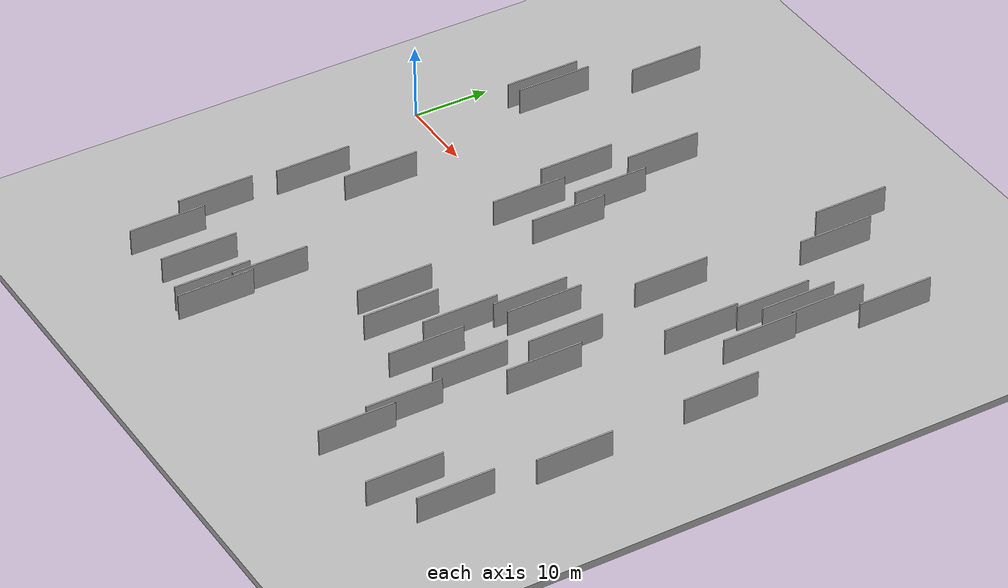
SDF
<?xml version="1.0" encoding="utf-8"?>

<sdf version="1.6">

   <world name="default">

      <gui fullscreen="0">

         <camera name="user_camera">

            <pose>-15 0 4.57585 0 0 0</pose>

            <view_controller>orbit</view_controller>

         </camera>

      </gui>

      <scene>

         <sky>

           <clouds>

             <speed>12</speed>

           </clouds>

         </sky>

         <ambient>0.4 0.4 0.4 1</ambient>

         <background>0.7 0.7 0.7 1</background>

         <shadows>1</shadows>

      </scene>

      <gravity>0 0 -9.8066</gravity>

      <magnetic_field>6e-06 2.3e-05 -4.2e-05</magnetic_field>

      <physics default="0" name="default_physics" type="ode">

         <ode>

            <solver>

               <type>quick</type>

               <iters>10</iters>

               <sor>1.0</sor>

               <use_dynamic_moi_rescaling>0</use_dynamic_moi_rescaling>

            </solver>

            <constraints>

               <cfm>0</cfm>

               <erp>0.2</erp>

               <contact_max_correcting_vel>100</contact_max_correcting_vel>

               <contact_surface_layer>0.001</contact_surface_layer>

            </constraints>

         </ode>

         <max_step_size>0.004</max_step_size>

         <real_time_factor>1</real_time_factor>

         <real_time_update_rate>250</real_time_update_rate>

      </physics>

      <light name="sun" type="directional">

         <cast_shadows>1</cast_shadows>

         <pose>0 0 10 0 0 0</pose>

         <diffuse>0.8 0.8 0.8 1</diffuse>

         <specular>0.2 0.2 0.2 1</specular>

         <attenuation>

            <range>1000</range>

            <constant>0.9</constant>

            <linear>0.01</linear>

            <quadratic>0.001</quadratic>

         </attenuation>

         <direction>-0.5 0.1 -0.9</direction>

      </light>

      <include>

         <name>ground_plane_1</name>

         <uri>model://HANNAS_ground_plane</uri>

         <pose>0 0 0  0 0 0</pose>

      </include>

      <include>

         <name>ground_plane_2</name>

         <uri>model://HANNAS_ground_plane</uri>

         <pose>100 0 0  0 0 0</pose>

      </include>

      <model name="HANNAS_wall_1">

         <static>1</static>

         <pose frame="">62.5590 -37.4555 0.0 0.000000 0.000000 1.570796</pose>

         <link name="link">

            <pose frame="">0 0 2.00 0 0 0</pose>

            <collision name="collision">

               <geometry>

                  <box>

                     <size>10.00 0.2 4.00</size>

                  </box>

               </geometry>

               <max_contacts>10</max_contacts>

               <surface>

                  <contact>

                     <ode/>

                  </contact>

                  <bounce/>

                  <friction>

                     <torsional>

                        <ode/>

                     </torsional>

                     <ode/>

                  </friction>

               </surface>

            </collision>

            <visual name="visual">

               <cast_shadows>0</cast_shadows>

               <geometry>

                  <box>

                     <size>10.00 0.2 4.00</size>

                  </box>

               </geometry>

               <material>

                  <script>

                     <uri>model://HANNAS_wall/materials/scripts</uri>

                     <uri>model://HANNAS_wall/materials/textures</uri>

                     <name>vrc/HANNAS_wall</name>

                  </script>

               </material>

            </visual>

            <self_collide>0</self_collide>

            <enable_wind>0</enable_wind>

            <kinematic>0</kinematic>

         </link>

      </model>

      <model name="HANNAS_wall_2">

         <static>1</static>

         <pose frame="">50.7144 28.4899 0.0 0.000000 0.000000 1.570796</pose>

         <link name="link">

            <pose frame="">0 0 2.00 0 0 0</pose>

            <collision name="collision">

               <geometry>

                  <box>

                     <size>10.00 0.2 4.00</size>

                  </box>

               </geometry>

               <max_contacts>10</max_contacts>

               <surface>

                  <contact>

                     <ode/>

                  </contact>

                  <bounce/>

                  <friction>

                     <torsional>

                        <ode/>

                     </torsional>

                     <ode/>

                  </friction>

               </surface>

            </collision>

            <visual name="visual">

               <cast_shadows>0</cast_shadows>

               <geometry>

                  <box>

                     <size>10.00 0.2 4.00</size>

                  </box>

               </geometry>

               <material>

                  <script>

                     <uri>model://HANNAS_wall/materials/scripts</uri>

                     <uri>model://HANNAS_wall/materials/textures</uri>

                     <name>vrc/HANNAS_wall</name>

                  </script>

               </material>

            </visual>

            <self_collide>0</self_collide>

            <enable_wind>0</enable_wind>

            <kinematic>0</kinematic>

         </link>

      </model>

      <model name="HANNAS_wall_3">

         <static>1</static>

         <pose frame="">22.3722 9.6386 0.0 0.000000 0.000000 1.570796</pose>

         <link name="link">

            <pose frame="">0 0 2.00 0 0 0</pose>

            <collision name="collision">

               <geometry>

                  <box>

                     <size>10.00 0.2 4.00</size>

                  </box>

               </geometry>

               <max_contacts>10</max_contacts>

               <surface>

                  <contact>

                     <ode/>

                  </contact>

                  <bounce/>

                  <friction>

                     <torsional>

                        <ode/>

                     </torsional>

                     <ode/>

                  </friction>

               </surface>

            </collision>

            <visual name="visual">

               <cast_shadows>0</cast_shadows>

               <geometry>

                  <box>

                     <size>10.00 0.2 4.00</size>

                  </box>

               </geometry>

               <material>

                  <script>

                     <uri>model://HANNAS_wall/materials/scripts</uri>

                     <uri>model://HANNAS_wall/materials/textures</uri>

                     <name>vrc/HANNAS_wall</name>

                  </script>

               </material>

            </visual>

            <self_collide>0</self_collide>

            <enable_wind>0</enable_wind>

            <kinematic>0</kinematic>

         </link>

      </model>

      <model name="HANNAS_wall_4">

         <static>1</static>

         <pose frame="">68.6791 0.6050 0.0 0.000000 0.000000 1.570796</pose>

         <link name="link">

            <pose frame="">0 0 2.00 0 0 0</pose>

            <collision name="collision">

               <geometry>

                  <box>

                     <size>10.00 0.2 4.00</size>

                  </box>

               </geometry>

               <max_contacts>10</max_contacts>

               <surface>

                  <contact>

                     <ode/>

                  </contact>

                  <bounce/>

                  <friction>

                     <torsional>

                        <ode/>

                     </torsional>

                     <ode/>

                  </friction>

               </surface>

            </collision>

            <visual name="visual">

               <cast_shadows>0</cast_shadows>

               <geometry>

                  <box>

                     <size>10.00 0.2 4.00</size>

                  </box>

               </geometry>

               <material>

                  <script>

                     <uri>model://HANNAS_wall/materials/scripts</uri>

                     <uri>model://HANNAS_wall/materials/textures</uri>

                     <name>vrc/HANNAS_wall</name>

                  </script>

               </material>

            </visual>

            <self_collide>0</self_collide>

            <enable_wind>0</enable_wind>

            <kinematic>0</kinematic>

         </link>

      </model>

      <model name="HANNAS_wall_5">

         <static>1</static>

         <pose frame="">57.3761 15.1290 0.0 0.000000 0.000000 1.570796</pose>

         <link name="link">

            <pose frame="">0 0 2.00 0 0 0</pose>

            <collision name="collision">

               <geometry>

                  <box>

                     <size>10.00 0.2 4.00</size>

                  </box>

               </geometry>

               <max_contacts>10</max_contacts>

               <surface>

                  <contact>

                     <ode/>

                  </contact>

                  <bounce/>

                  <friction>

                     <torsional>

                        <ode/>

                     </torsional>

                     <ode/>

                  </friction>

               </surface>

            </collision>

            <visual name="visual">

               <cast_shadows>0</cast_shadows>

               <geometry>

                  <box>

                     <size>10.00 0.2 4.00</size>

                  </box>

               </geometry>

               <material>

                  <script>

                     <uri>model://HANNAS_wall/materials/scripts</uri>

                     <uri>model://HANNAS_wall/materials/textures</uri>

                     <name>vrc/HANNAS_wall</name>

                  </script>

               </material>

            </visual>

            <self_collide>0</self_collide>

            <enable_wind>0</enable_wind>

            <kinematic>0</kinematic>

         </link>

      </model>

      <model name="HANNAS_wall_6">

         <static>1</static>

         <pose frame="">5.4550 -30.9856 0.0 0.000000 0.000000 1.570796</pose>

         <link name="link">

            <pose frame="">0 0 2.00 0 0 0</pose>

            <collision name="collision">

               <geometry>

                  <box>

                     <size>10.00 0.2 4.00</size>

                  </box>

               </geometry>

               <max_contacts>10</max_contacts>

               <surface>

                  <contact>

                     <ode/>

                  </contact>

                  <bounce/>

                  <friction>

                     <torsional>

                        <ode/>

                     </torsional>

                     <ode/>

                  </friction>

               </surface>

            </collision>

            <visual name="visual">

               <cast_shadows>0</cast_shadows>

               <geometry>

                  <box>

                     <size>10.00 0.2 4.00</size>

                  </box>

               </geometry>

               <material>

                  <script>

                     <uri>model://HANNAS_wall/materials/scripts</uri>

                     <uri>model://HANNAS_wall/materials/textures</uri>

                     <name>vrc/HANNAS_wall</name>

                  </script>

               </material>

            </visual>

            <self_collide>0</self_collide>

            <enable_wind>0</enable_wind>

            <kinematic>0</kinematic>

         </link>

      </model>

      <model name="HANNAS_wall_7">

         <static>1</static>

         <pose frame="">69.1262 -19.2305 0.0 0.000000 0.000000 1.570796</pose>

         <link name="link">

            <pose frame="">0 0 2.00 0 0 0</pose>

            <collision name="collision">

               <geometry>

                  <box>

                     <size>10.00 0.2 4.00</size>

                  </box>

               </geometry>

               <max_contacts>10</max_contacts>

               <surface>

                  <contact>

                     <ode/>

                  </contact>

                  <bounce/>

                  <friction>

                     <torsional>

                        <ode/>

                     </torsional>

                     <ode/>

                  </friction>

               </surface>

            </collision>

            <visual name="visual">

               <cast_shadows>0</cast_shadows>

               <geometry>

                  <box>

                     <size>10.00 0.2 4.00</size>

                  </box>

               </geometry>

               <material>

                  <script>

                     <uri>model://HANNAS_wall/materials/scripts</uri>

                     <uri>model://HANNAS_wall/materials/textures</uri>

                     <name>vrc/HANNAS_wall</name>

                  </script>

               </material>

            </visual>

            <self_collide>0</self_collide>

            <enable_wind>0</enable_wind>

            <kinematic>0</kinematic>

         </link>

      </model>

      <model name="HANNAS_wall_8">

         <static>1</static>

         <pose frame="">7.8083 -38.7250 0.0 0.000000 0.000000 1.570796</pose>

         <link name="link">

            <pose frame="">0 0 2.00 0 0 0</pose>

            <collision name="collision">

               <geometry>

                  <box>

                     <size>10.00 0.2 4.00</size>

                  </box>

               </geometry>

               <max_contacts>10</max_contacts>

               <surface>

                  <contact>

                     <ode/>

                  </contact>

                  <bounce/>

                  <friction>

                     <torsional>

                        <ode/>

                     </torsional>

                     <ode/>

                  </friction>

               </surface>

            </collision>

            <visual name="visual">

               <cast_shadows>0</cast_shadows>

               <geometry>

                  <box>

                     <size>10.00 0.2 4.00</size>

                  </box>

               </geometry>

               <material>

                  <script>

                     <uri>model://HANNAS_wall/materials/scripts</uri>

                     <uri>model://HANNAS_wall/materials/textures</uri>

                     <name>vrc/HANNAS_wall</name>

                  </script>

               </material>

            </visual>

            <self_collide>0</self_collide>

            <enable_wind>0</enable_wind>

            <kinematic>0</kinematic>

         </link>

      </model>

      <model name="HANNAS_wall_9">

         <static>1</static>

         <pose frame="">36.4498 -22.9727 0.0 0.000000 0.000000 1.570796</pose>

         <link name="link">

            <pose frame="">0 0 2.00 0 0 0</pose>

            <collision name="collision">

               <geometry>

                  <box>

                     <size>10.00 0.2 4.00</size>

                  </box>

               </geometry>

               <max_contacts>10</max_contacts>

               <surface>

                  <contact>

                     <ode/>

                  </contact>

                  <bounce/>

                  <friction>

                     <torsional>

                        <ode/>

                     </torsional>

                     <ode/>

                  </friction>

               </surface>

            </collision>

            <visual name="visual">

               <cast_shadows>0</cast_shadows>

               <geometry>

                  <box>

                     <size>10.00 0.2 4.00</size>

                  </box>

               </geometry>

               <material>

                  <script>

                     <uri>model://HANNAS_wall/materials/scripts</uri>

                     <uri>model://HANNAS_wall/materials/textures</uri>

                     <name>vrc/HANNAS_wall</name>

                  </script>

               </material>

            </visual>

            <self_collide>0</self_collide>

            <enable_wind>0</enable_wind>

            <kinematic>0</kinematic>

         </link>

      </model>

      <model name="HANNAS_wall_10">

         <static>1</static>

         <pose frame="">56.7825 5.5592 0.0 0.000000 0.000000 1.570796</pose>

         <link name="link">

            <pose frame="">0 0 2.00 0 0 0</pose>

            <collision name="collision">

               <geometry>

                  <box>

                     <size>10.00 0.2 4.00</size>

                  </box>

               </geometry>

               <max_contacts>10</max_contacts>

               <surface>

                  <contact>

                     <ode/>

                  </contact>

                  <bounce/>

                  <friction>

                     <torsional>

                        <ode/>

                     </torsional>

                     <ode/>

                  </friction>

               </surface>

            </collision>

            <visual name="visual">

               <cast_shadows>0</cast_shadows>

               <geometry>

                  <box>

                     <size>10.00 0.2 4.00</size>

                  </box>

               </geometry>

               <material>

                  <script>

                     <uri>model://HANNAS_wall/materials/scripts</uri>

                     <uri>model://HANNAS_wall/materials/textures</uri>

                     <name>vrc/HANNAS_wall</name>

                  </script>

               </material>

            </visual>

            <self_collide>0</self_collide>

            <enable_wind>0</enable_wind>

            <kinematic>0</kinematic>

         </link>

      </model>

      <model name="HANNAS_wall_11">

         <static>1</static>

         <pose frame="">25.0976 1.2938 0.0 0.000000 0.000000 1.570796</pose>

         <link name="link">

            <pose frame="">0 0 2.00 0 0 0</pose>

            <collision name="collision">

               <geometry>

                  <box>

                     <size>10.00 0.2 4.00</size>

                  </box>

               </geometry>

               <max_contacts>10</max_contacts>

               <surface>

                  <contact>

                     <ode/>

                  </contact>

                  <bounce/>

                  <friction>

                     <torsional>

                        <ode/>

                     </torsional>

                     <ode/>

                  </friction>

               </surface>

            </collision>

            <visual name="visual">

               <cast_shadows>0</cast_shadows>

               <geometry>

                  <box>

                     <size>10.00 0.2 4.00</size>

                  </box>

               </geometry>

               <material>

                  <script>

                     <uri>model://HANNAS_wall/materials/scripts</uri>

                     <uri>model://HANNAS_wall/materials/textures</uri>

                     <name>vrc/HANNAS_wall</name>

                  </script>

               </material>

            </visual>

            <self_collide>0</self_collide>

            <enable_wind>0</enable_wind>

            <kinematic>0</kinematic>

         </link>

      </model>

      <model name="HANNAS_wall_12">

         <static>1</static>

         <pose frame="">30.6973 3.4397 0.0 0.000000 0.000000 1.570796</pose>

         <link name="link">

            <pose frame="">0 0 2.00 0 0 0</pose>

            <collision name="collision">

               <geometry>

                  <box>

                     <size>10.00 0.2 4.00</size>

                  </box>

               </geometry>

               <max_contacts>10</max_contacts>

               <surface>

                  <contact>

                     <ode/>

                  </contact>

                  <bounce/>

                  <friction>

                     <torsional>

                        <ode/>

                     </torsional>

                     <ode/>

                  </friction>

               </surface>

            </collision>

            <visual name="visual">

               <cast_shadows>0</cast_shadows>

               <geometry>

                  <box>

                     <size>10.00 0.2 4.00</size>

                  </box>

               </geometry>

               <material>

                  <script>

                     <uri>model://HANNAS_wall/materials/scripts</uri>

                     <uri>model://HANNAS_wall/materials/textures</uri>

                     <name>vrc/HANNAS_wall</name>

                  </script>

               </material>

            </visual>

            <self_collide>0</self_collide>

            <enable_wind>0</enable_wind>

            <kinematic>0</kinematic>

         </link>

      </model>

      <model name="HANNAS_wall_13">

         <static>1</static>

         <pose frame="">67.9543 -34.0128 0.0 0.000000 0.000000 1.570796</pose>

         <link name="link">

            <pose frame="">0 0 2.00 0 0 0</pose>

            <collision name="collision">

               <geometry>

                  <box>

                     <size>10.00 0.2 4.00</size>

                  </box>

               </geometry>

               <max_contacts>10</max_contacts>

               <surface>

                  <contact>

                     <ode/>

                  </contact>

                  <bounce/>

                  <friction>

                     <torsional>

                        <ode/>

                     </torsional>

                     <ode/>

                  </friction>

               </surface>

            </collision>

            <visual name="visual">

               <cast_shadows>0</cast_shadows>

               <geometry>

                  <box>

                     <size>10.00 0.2 4.00</size>

                  </box>

               </geometry>

               <material>

                  <script>

                     <uri>model://HANNAS_wall/materials/scripts</uri>

                     <uri>model://HANNAS_wall/materials/textures</uri>

                     <name>vrc/HANNAS_wall</name>

                  </script>

               </material>

            </visual>

            <self_collide>0</self_collide>

            <enable_wind>0</enable_wind>

            <kinematic>0</kinematic>

         </link>

      </model>

      <model name="HANNAS_wall_14">

         <static>1</static>

         <pose frame="">6.1624 -17.9956 0.0 0.000000 0.000000 1.570796</pose>

         <link name="link">

            <pose frame="">0 0 2.00 0 0 0</pose>

            <collision name="collision">

               <geometry>

                  <box>

                     <size>10.00 0.2 4.00</size>

                  </box>

               </geometry>

               <max_contacts>10</max_contacts>

               <surface>

                  <contact>

                     <ode/>

                  </contact>

                  <bounce/>

                  <friction>

                     <torsional>

                        <ode/>

                     </torsional>

                     <ode/>

                  </friction>

               </surface>

            </collision>

            <visual name="visual">

               <cast_shadows>0</cast_shadows>

               <geometry>

                  <box>

                     <size>10.00 0.2 4.00</size>

                  </box>

               </geometry>

               <material>

                  <script>

                     <uri>model://HANNAS_wall/materials/scripts</uri>

                     <uri>model://HANNAS_wall/materials/textures</uri>

                     <name>vrc/HANNAS_wall</name>

                  </script>

               </material>

            </visual>

            <self_collide>0</self_collide>

            <enable_wind>0</enable_wind>

            <kinematic>0</kinematic>

         </link>

      </model>

      <model name="HANNAS_wall_15">

         <static>1</static>

         <pose frame="">44.3474 -8.2246 0.0 0.000000 0.000000 1.570796</pose>

         <link name="link">

            <pose frame="">0 0 2.00 0 0 0</pose>

            <collision name="collision">

               <geometry>

                  <box>

                     <size>10.00 0.2 4.00</size>

                  </box>

               </geometry>

               <max_contacts>10</max_contacts>

               <surface>

                  <contact>

                     <ode/>

                  </contact>

                  <bounce/>

                  <friction>

                     <torsional>

                        <ode/>

                     </torsional>

                     <ode/>

                  </friction>

               </surface>

            </collision>

            <visual name="visual">

               <cast_shadows>0</cast_shadows>

               <geometry>

                  <box>

                     <size>10.00 0.2 4.00</size>

                  </box>

               </geometry>

               <material>

                  <script>

                     <uri>model://HANNAS_wall/materials/scripts</uri>

                     <uri>model://HANNAS_wall/materials/textures</uri>

                     <name>vrc/HANNAS_wall</name>

                  </script>

               </material>

            </visual>

            <self_collide>0</self_collide>

            <enable_wind>0</enable_wind>

            <kinematic>0</kinematic>

         </link>

      </model>

      <model name="HANNAS_wall_16">

         <static>1</static>

         <pose frame="">50.3588 -9.0022 0.0 0.000000 0.000000 1.570796</pose>

         <link name="link">

            <pose frame="">0 0 2.00 0 0 0</pose>

            <collision name="collision">

               <geometry>

                  <box>

                     <size>10.00 0.2 4.00</size>

                  </box>

               </geometry>

               <max_contacts>10</max_contacts>

               <surface>

                  <contact>

                     <ode/>

                  </contact>

                  <bounce/>

                  <friction>

                     <torsional>

                        <ode/>

                     </torsional>

                     <ode/>

                  </friction>

               </surface>

            </collision>

            <visual name="visual">

               <cast_shadows>0</cast_shadows>

               <geometry>

                  <box>

                     <size>10.00 0.2 4.00</size>

                  </box>

               </geometry>

               <material>

                  <script>

                     <uri>model://HANNAS_wall/materials/scripts</uri>

                     <uri>model://HANNAS_wall/materials/textures</uri>

                     <name>vrc/HANNAS_wall</name>

                  </script>

               </material>

            </visual>

            <self_collide>0</self_collide>

            <enable_wind>0</enable_wind>

            <kinematic>0</kinematic>

         </link>

      </model>

      <model name="HANNAS_wall_17">

         <static>1</static>

         <pose frame="">11.4152 -11.5198 0.0 0.000000 0.000000 1.570796</pose>

         <link name="link">

            <pose frame="">0 0 2.00 0 0 0</pose>

            <collision name="collision">

               <geometry>

                  <box>

                     <size>10.00 0.2 4.00</size>

                  </box>

               </geometry>

               <max_contacts>10</max_contacts>

               <surface>

                  <contact>

                     <ode/>

                  </contact>

                  <bounce/>

                  <friction>

                     <torsional>

                        <ode/>

                     </torsional>

                     <ode/>

                  </friction>

               </surface>

            </collision>

            <visual name="visual">

               <cast_shadows>0</cast_shadows>

               <geometry>

                  <box>

                     <size>10.00 0.2 4.00</size>

                  </box>

               </geometry>

               <material>

                  <script>

                     <uri>model://HANNAS_wall/materials/scripts</uri>

                     <uri>model://HANNAS_wall/materials/textures</uri>

                     <name>vrc/HANNAS_wall</name>

                  </script>

               </material>

            </visual>

            <self_collide>0</self_collide>

            <enable_wind>0</enable_wind>

            <kinematic>0</kinematic>

         </link>

      </model>

      <model name="HANNAS_wall_18">

         <static>1</static>

         <pose frame="">59.1475 17.5195 0.0 0.000000 0.000000 1.570796</pose>

         <link name="link">

            <pose frame="">0 0 2.00 0 0 0</pose>

            <collision name="collision">

               <geometry>

                  <box>

                     <size>10.00 0.2 4.00</size>

                  </box>

               </geometry>

               <max_contacts>10</max_contacts>

               <surface>

                  <contact>

                     <ode/>

                  </contact>

                  <bounce/>

                  <friction>

                     <torsional>

                        <ode/>

                     </torsional>

                     <ode/>

                  </friction>

               </surface>

            </collision>

            <visual name="visual">

               <cast_shadows>0</cast_shadows>

               <geometry>

                  <box>

                     <size>10.00 0.2 4.00</size>

                  </box>

               </geometry>

               <material>

                  <script>

                     <uri>model://HANNAS_wall/materials/scripts</uri>

                     <uri>model://HANNAS_wall/materials/textures</uri>

                     <name>vrc/HANNAS_wall</name>

                  </script>

               </material>

            </visual>

            <self_collide>0</self_collide>

            <enable_wind>0</enable_wind>

            <kinematic>0</kinematic>

         </link>

      </model>

      <model name="HANNAS_wall_19">

         <static>1</static>

         <pose frame="">40.9653 -17.6254 0.0 0.000000 0.000000 1.570796</pose>

         <link name="link">

            <pose frame="">0 0 2.00 0 0 0</pose>

            <collision name="collision">

               <geometry>

                  <box>

                     <size>10.00 0.2 4.00</size>

                  </box>

               </geometry>

               <max_contacts>10</max_contacts>

               <surface>

                  <contact>

                     <ode/>

                  </contact>

                  <bounce/>

                  <friction>

                     <torsional>

                        <ode/>

                     </torsional>

                     <ode/>

                  </friction>

               </surface>

            </collision>

            <visual name="visual">

               <cast_shadows>0</cast_shadows>

               <geometry>

                  <box>

                     <size>10.00 0.2 4.00</size>

                  </box>

               </geometry>

               <material>

                  <script>

                     <uri>model://HANNAS_wall/materials/scripts</uri>

                     <uri>model://HANNAS_wall/materials/textures</uri>

                     <name>vrc/HANNAS_wall</name>

                  </script>

               </material>

            </visual>

            <self_collide>0</self_collide>

            <enable_wind>0</enable_wind>

            <kinematic>0</kinematic>

         </link>

      </model>

      <model name="HANNAS_wall_20">

         <static>1</static>

         <pose frame="">42.2173 -8.8678 0.0 0.000000 0.000000 1.570796</pose>

         <link name="link">

            <pose frame="">0 0 2.00 0 0 0</pose>

            <collision name="collision">

               <geometry>

                  <box>

                     <size>10.00 0.2 4.00</size>

                  </box>

               </geometry>

               <max_contacts>10</max_contacts>

               <surface>

                  <contact>

                     <ode/>

                  </contact>

                  <bounce/>

                  <friction>

                     <torsional>

                        <ode/>

                     </torsional>

                     <ode/>

                  </friction>

               </surface>

            </collision>

            <visual name="visual">

               <cast_shadows>0</cast_shadows>

               <geometry>

                  <box>

                     <size>10.00 0.2 4.00</size>

                  </box>

               </geometry>

               <material>

                  <script>

                     <uri>model://HANNAS_wall/materials/scripts</uri>

                     <uri>model://HANNAS_wall/materials/textures</uri>

                     <name>vrc/HANNAS_wall</name>

                  </script>

               </material>

            </visual>

            <self_collide>0</self_collide>

            <enable_wind>0</enable_wind>

            <kinematic>0</kinematic>

         </link>

      </model>

      <model name="HANNAS_wall_21">

         <static>1</static>

         <pose frame="">14.6053 -38.0603 0.0 0.000000 0.000000 1.570796</pose>

         <link name="link">

            <pose frame="">0 0 2.00 0 0 0</pose>

            <collision name="collision">

               <geometry>

                  <box>

                     <size>10.00 0.2 4.00</size>

                  </box>

               </geometry>

               <max_contacts>10</max_contacts>

               <surface>

                  <contact>

                     <ode/>

                  </contact>

                  <bounce/>

                  <friction>

                     <torsional>

                        <ode/>

                     </torsional>

                     <ode/>

                  </friction>

               </surface>

            </collision>

            <visual name="visual">

               <cast_shadows>0</cast_shadows>

               <geometry>

                  <box>

                     <size>10.00 0.2 4.00</size>

                  </box>

               </geometry>

               <material>

                  <script>

                     <uri>model://HANNAS_wall/materials/scripts</uri>

                     <uri>model://HANNAS_wall/materials/textures</uri>

                     <name>vrc/HANNAS_wall</name>

                  </script>

               </material>

            </visual>

            <self_collide>0</self_collide>

            <enable_wind>0</enable_wind>

            <kinematic>0</kinematic>

         </link>

      </model>

      <model name="HANNAS_wall_22">

         <static>1</static>

         <pose frame="">64.2783 27.6987 0.0 0.000000 0.000000 1.570796</pose>

         <link name="link">

            <pose frame="">0 0 2.00 0 0 0</pose>

            <collision name="collision">

               <geometry>

                  <box>

                     <size>10.00 0.2 4.00</size>

                  </box>

               </geometry>

               <max_contacts>10</max_contacts>

               <surface>

                  <contact>

                     <ode/>

                  </contact>

                  <bounce/>

                  <friction>

                     <torsional>

                        <ode/>

                     </torsional>

                     <ode/>

                  </friction>

               </surface>

            </collision>

            <visual name="visual">

               <cast_shadows>0</cast_shadows>

               <geometry>

                  <box>

                     <size>10.00 0.2 4.00</size>

                  </box>

               </geometry>

               <material>

                  <script>

                     <uri>model://HANNAS_wall/materials/scripts</uri>

                     <uri>model://HANNAS_wall/materials/textures</uri>

                     <name>vrc/HANNAS_wall</name>

                  </script>

               </material>

            </visual>

            <self_collide>0</self_collide>

            <enable_wind>0</enable_wind>

            <kinematic>0</kinematic>

         </link>

      </model>

      <model name="HANNAS_wall_23">

         <static>1</static>

         <pose frame="">61.3411 20.1874 0.0 0.000000 0.000000 1.570796</pose>

         <link name="link">

            <pose frame="">0 0 2.00 0 0 0</pose>

            <collision name="collision">

               <geometry>

                  <box>

                     <size>10.00 0.2 4.00</size>

                  </box>

               </geometry>

               <max_contacts>10</max_contacts>

               <surface>

                  <contact>

                     <ode/>

                  </contact>

                  <bounce/>

                  <friction>

                     <torsional>

                        <ode/>

                     </torsional>

                     <ode/>

                  </friction>

               </surface>

            </collision>

            <visual name="visual">

               <cast_shadows>0</cast_shadows>

               <geometry>

                  <box>

                     <size>10.00 0.2 4.00</size>

                  </box>

               </geometry>

               <material>

                  <script>

                     <uri>model://HANNAS_wall/materials/scripts</uri>

                     <uri>model://HANNAS_wall/materials/textures</uri>

                     <name>vrc/HANNAS_wall</name>

                  </script>

               </material>

            </visual>

            <self_collide>0</self_collide>

            <enable_wind>0</enable_wind>

            <kinematic>0</kinematic>

         </link>

      </model>

      <model name="HANNAS_wall_24">

         <static>1</static>

         <pose frame="">44.0093 -23.9181 0.0 0.000000 0.000000 1.570796</pose>

         <link name="link">

            <pose frame="">0 0 2.00 0 0 0</pose>

            <collision name="collision">

               <geometry>

                  <box>

                     <size>10.00 0.2 4.00</size>

                  </box>

               </geometry>

               <max_contacts>10</max_contacts>

               <surface>

                  <contact>

                     <ode/>

                  </contact>

                  <bounce/>

                  <friction>

                     <torsional>

                        <ode/>

                     </torsional>

                     <ode/>

                  </friction>

               </surface>

            </collision>

            <visual name="visual">

               <cast_shadows>0</cast_shadows>

               <geometry>

                  <box>

                     <size>10.00 0.2 4.00</size>

                  </box>

               </geometry>

               <material>

                  <script>

                     <uri>model://HANNAS_wall/materials/scripts</uri>

                     <uri>model://HANNAS_wall/materials/textures</uri>

                     <name>vrc/HANNAS_wall</name>

                  </script>

               </material>

            </visual>

            <self_collide>0</self_collide>

            <enable_wind>0</enable_wind>

            <kinematic>0</kinematic>

         </link>

      </model>

      <model name="HANNAS_wall_25">

         <static>1</static>

         <pose frame="">20.2251 -39.2330 0.0 0.000000 0.000000 1.570796</pose>

         <link name="link">

            <pose frame="">0 0 2.00 0 0 0</pose>

            <collision name="collision">

               <geometry>

                  <box>

                     <size>10.00 0.2 4.00</size>

                  </box>

               </geometry>

               <max_contacts>10</max_contacts>

               <surface>

                  <contact>

                     <ode/>

                  </contact>

                  <bounce/>

                  <friction>

                     <torsional>

                        <ode/>

                     </torsional>

                     <ode/>

                  </friction>

               </surface>

            </collision>

            <visual name="visual">

               <cast_shadows>0</cast_shadows>

               <geometry>

                  <box>

                     <size>10.00 0.2 4.00</size>

                  </box>

               </geometry>

               <material>

                  <script>

                     <uri>model://HANNAS_wall/materials/scripts</uri>

                     <uri>model://HANNAS_wall/materials/textures</uri>

                     <name>vrc/HANNAS_wall</name>

                  </script>

               </material>

            </visual>

            <self_collide>0</self_collide>

            <enable_wind>0</enable_wind>

            <kinematic>0</kinematic>

         </link>

      </model>

      <model name="HANNAS_wall_26">

         <static>1</static>

         <pose frame="">25.7327 19.9511 0.0 0.000000 0.000000 1.570796</pose>

         <link name="link">

            <pose frame="">0 0 2.00 0 0 0</pose>

            <collision name="collision">

               <geometry>

                  <box>

                     <size>10.00 0.2 4.00</size>

                  </box>

               </geometry>

               <max_contacts>10</max_contacts>

               <surface>

                  <contact>

                     <ode/>

                  </contact>

                  <bounce/>

                  <friction>

                     <torsional>

                        <ode/>

                     </torsional>

                     <ode/>

                  </friction>

               </surface>

            </collision>

            <visual name="visual">

               <cast_shadows>0</cast_shadows>

               <geometry>

                  <box>

                     <size>10.00 0.2 4.00</size>

                  </box>

               </geometry>

               <material>

                  <script>

                     <uri>model://HANNAS_wall/materials/scripts</uri>

                     <uri>model://HANNAS_wall/materials/textures</uri>

                     <name>vrc/HANNAS_wall</name>

                  </script>

               </material>

            </visual>

            <self_collide>0</self_collide>

            <enable_wind>0</enable_wind>

            <kinematic>0</kinematic>

         </link>

      </model>

      <model name="HANNAS_wall_27">

         <static>1</static>

         <pose frame="">21.8670 -39.6916 0.0 0.000000 0.000000 1.570796</pose>

         <link name="link">

            <pose frame="">0 0 2.00 0 0 0</pose>

            <collision name="collision">

               <geometry>

                  <box>

                     <size>10.00 0.2 4.00</size>

                  </box>

               </geometry>

               <max_contacts>10</max_contacts>

               <surface>

                  <contact>

                     <ode/>

                  </contact>

                  <bounce/>

                  <friction>

                     <torsional>

                        <ode/>

                     </torsional>

                     <ode/>

                  </friction>

               </surface>

            </collision>

            <visual name="visual">

               <cast_shadows>0</cast_shadows>

               <geometry>

                  <box>

                     <size>10.00 0.2 4.00</size>

                  </box>

               </geometry>

               <material>

                  <script>

                     <uri>model://HANNAS_wall/materials/scripts</uri>

                     <uri>model://HANNAS_wall/materials/textures</uri>

                     <name>vrc/HANNAS_wall</name>

                  </script>

               </material>

            </visual>

            <self_collide>0</self_collide>

            <enable_wind>0</enable_wind>

            <kinematic>0</kinematic>

         </link>

      </model>

      <model name="HANNAS_wall_28">

         <static>1</static>

         <pose frame="">5.0430 15.3162 0.0 0.000000 0.000000 1.570796</pose>

         <link name="link">

            <pose frame="">0 0 2.00 0 0 0</pose>

            <collision name="collision">

               <geometry>

                  <box>

                     <size>10.00 0.2 4.00</size>

                  </box>

               </geometry>

               <max_contacts>10</max_contacts>

               <surface>

                  <contact>

                     <ode/>

                  </contact>

                  <bounce/>

                  <friction>

                     <torsional>

                        <ode/>

                     </torsional>

                     <ode/>

                  </friction>

               </surface>

            </collision>

            <visual name="visual">

               <cast_shadows>0</cast_shadows>

               <geometry>

                  <box>

                     <size>10.00 0.2 4.00</size>

                  </box>

               </geometry>

               <material>

                  <script>

                     <uri>model://HANNAS_wall/materials/scripts</uri>

                     <uri>model://HANNAS_wall/materials/textures</uri>

                     <name>vrc/HANNAS_wall</name>

                  </script>

               </material>

            </visual>

            <self_collide>0</self_collide>

            <enable_wind>0</enable_wind>

            <kinematic>0</kinematic>

         </link>

      </model>

      <model name="HANNAS_wall_29">

         <static>1</static>

         <pose frame="">21.2377 -32.1067 0.0 0.000000 0.000000 1.570796</pose>

         <link name="link">

            <pose frame="">0 0 2.00 0 0 0</pose>

            <collision name="collision">

               <geometry>

                  <box>

                     <size>10.00 0.2 4.00</size>

                  </box>

               </geometry>

               <max_contacts>10</max_contacts>

               <surface>

                  <contact>

                     <ode/>

                  </contact>

                  <bounce/>

                  <friction>

                     <torsional>

                        <ode/>

                     </torsional>

                     <ode/>

                  </friction>

               </surface>

            </collision>

            <visual name="visual">

               <cast_shadows>0</cast_shadows>

               <geometry>

                  <box>

                     <size>10.00 0.2 4.00</size>

                  </box>

               </geometry>

               <material>

                  <script>

                     <uri>model://HANNAS_wall/materials/scripts</uri>

                     <uri>model://HANNAS_wall/materials/textures</uri>

                     <name>vrc/HANNAS_wall</name>

                  </script>

               </material>

            </visual>

            <self_collide>0</self_collide>

            <enable_wind>0</enable_wind>

            <kinematic>0</kinematic>

         </link>

      </model>

      <model name="HANNAS_wall_30">

         <static>1</static>

         <pose frame="">28.5584 10.6676 0.0 0.000000 0.000000 1.570796</pose>

         <link name="link">

            <pose frame="">0 0 2.00 0 0 0</pose>

            <collision name="collision">

               <geometry>

                  <box>

                     <size>10.00 0.2 4.00</size>

                  </box>

               </geometry>

               <max_contacts>10</max_contacts>

               <surface>

                  <contact>

                     <ode/>

                  </contact>

                  <bounce/>

                  <friction>

                     <torsional>

                        <ode/>

                     </torsional>

                     <ode/>

                  </friction>

               </surface>

            </collision>

            <visual name="visual">

               <cast_shadows>0</cast_shadows>

               <geometry>

                  <box>

                     <size>10.00 0.2 4.00</size>

                  </box>

               </geometry>

               <material>

                  <script>

                     <uri>model://HANNAS_wall/materials/scripts</uri>

                     <uri>model://HANNAS_wall/materials/textures</uri>

                     <name>vrc/HANNAS_wall</name>

                  </script>

               </material>

            </visual>

            <self_collide>0</self_collide>

            <enable_wind>0</enable_wind>

            <kinematic>0</kinematic>

         </link>

      </model>

      <model name="HANNAS_wall_31">

         <static>1</static>

         <pose frame="">46.7606 33.3332 0.0 0.000000 0.000000 1.570796</pose>

         <link name="link">

            <pose frame="">0 0 2.00 0 0 0</pose>

            <collision name="collision">

               <geometry>

                  <box>

                     <size>10.00 0.2 4.00</size>

                  </box>

               </geometry>

               <max_contacts>10</max_contacts>

               <surface>

                  <contact>

                     <ode/>

                  </contact>

                  <bounce/>

                  <friction>

                     <torsional>

                        <ode/>

                     </torsional>

                     <ode/>

                  </friction>

               </surface>

            </collision>

            <visual name="visual">

               <cast_shadows>0</cast_shadows>

               <geometry>

                  <box>

                     <size>10.00 0.2 4.00</size>

                  </box>

               </geometry>

               <material>

                  <script>

                     <uri>model://HANNAS_wall/materials/scripts</uri>

                     <uri>model://HANNAS_wall/materials/textures</uri>

                     <name>vrc/HANNAS_wall</name>

                  </script>

               </material>

            </visual>

            <self_collide>0</self_collide>

            <enable_wind>0</enable_wind>

            <kinematic>0</kinematic>

         </link>

      </model>

      <model name="HANNAS_wall_32">

         <static>1</static>

         <pose frame="">51.1187 -30.9648 0.0 0.000000 0.000000 1.570796</pose>

         <link name="link">

            <pose frame="">0 0 2.00 0 0 0</pose>

            <collision name="collision">

               <geometry>

                  <box>

                     <size>10.00 0.2 4.00</size>

                  </box>

               </geometry>

               <max_contacts>10</max_contacts>

               <surface>

                  <contact>

                     <ode/>

                  </contact>

                  <bounce/>

                  <friction>

                     <torsional>

                        <ode/>

                     </torsional>

                     <ode/>

                  </friction>

               </surface>

            </collision>

            <visual name="visual">

               <cast_shadows>0</cast_shadows>

               <geometry>

                  <box>

                     <size>10.00 0.2 4.00</size>

                  </box>

               </geometry>

               <material>

                  <script>

                     <uri>model://HANNAS_wall/materials/scripts</uri>

                     <uri>model://HANNAS_wall/materials/textures</uri>

                     <name>vrc/HANNAS_wall</name>

                  </script>

               </material>

            </visual>

            <self_collide>0</self_collide>

            <enable_wind>0</enable_wind>

            <kinematic>0</kinematic>

         </link>

      </model>

      <model name="HANNAS_wall_33">

         <static>1</static>

         <pose frame="">48.8967 -20.9733 0.0 0.000000 0.000000 1.570796</pose>

         <link name="link">

            <pose frame="">0 0 2.00 0 0 0</pose>

            <collision name="collision">

               <geometry>

                  <box>

                     <size>10.00 0.2 4.00</size>

                  </box>

               </geometry>

               <max_contacts>10</max_contacts>

               <surface>

                  <contact>

                     <ode/>

                  </contact>

                  <bounce/>

                  <friction>

                     <torsional>

                        <ode/>

                     </torsional>

                     <ode/>

                  </friction>

               </surface>

            </collision>

            <visual name="visual">

               <cast_shadows>0</cast_shadows>

               <geometry>

                  <box>

                     <size>10.00 0.2 4.00</size>

                  </box>

               </geometry>

               <material>

                  <script>

                     <uri>model://HANNAS_wall/materials/scripts</uri>

                     <uri>model://HANNAS_wall/materials/textures</uri>

                     <name>vrc/HANNAS_wall</name>

                  </script>

               </material>

            </visual>

            <self_collide>0</self_collide>

            <enable_wind>0</enable_wind>

            <kinematic>0</kinematic>

         </link>

      </model>

      <model name="HANNAS_wall_34">

         <static>1</static>

         <pose frame="">61.8402 10.3669 0.0 0.000000 0.000000 1.570796</pose>

         <link name="link">

            <pose frame="">0 0 2.00 0 0 0</pose>

            <collision name="collision">

               <geometry>

                  <box>

                     <size>10.00 0.2 4.00</size>

                  </box>

               </geometry>

               <max_contacts>10</max_contacts>

               <surface>

                  <contact>

                     <ode/>

                  </contact>

                  <bounce/>

                  <friction>

                     <torsional>

                        <ode/>

                     </torsional>

                     <ode/>

                  </friction>

               </surface>

            </collision>

            <visual name="visual">

               <cast_shadows>0</cast_shadows>

               <geometry>

                  <box>

                     <size>10.00 0.2 4.00</size>

                  </box>

               </geometry>

               <material>

                  <script>

                     <uri>model://HANNAS_wall/materials/scripts</uri>

                     <uri>model://HANNAS_wall/materials/textures</uri>

                     <name>vrc/HANNAS_wall</name>

                  </script>

               </material>

            </visual>

            <self_collide>0</self_collide>

            <enable_wind>0</enable_wind>

            <kinematic>0</kinematic>

         </link>

      </model>

      <model name="HANNAS_wall_35">

         <static>1</static>

         <pose frame="">6.7884 15.9722 0.0 0.000000 0.000000 1.570796</pose>

         <link name="link">

            <pose frame="">0 0 2.00 0 0 0</pose>

            <collision name="collision">

               <geometry>

                  <box>

                     <size>10.00 0.2 4.00</size>

                  </box>

               </geometry>

               <max_contacts>10</max_contacts>

               <surface>

                  <contact>

                     <ode/>

                  </contact>

                  <bounce/>

                  <friction>

                     <torsional>

                        <ode/>

                     </torsional>

                     <ode/>

                  </friction>

               </surface>

            </collision>

            <visual name="visual">

               <cast_shadows>0</cast_shadows>

               <geometry>

                  <box>

                     <size>10.00 0.2 4.00</size>

                  </box>

               </geometry>

               <material>

                  <script>

                     <uri>model://HANNAS_wall/materials/scripts</uri>

                     <uri>model://HANNAS_wall/materials/textures</uri>

                     <name>vrc/HANNAS_wall</name>

                  </script>

               </material>

            </visual>

            <self_collide>0</self_collide>

            <enable_wind>0</enable_wind>

            <kinematic>0</kinematic>

         </link>

      </model>

      <model name="HANNAS_wall_36">

         <static>1</static>

         <pose frame="">31.8439 -21.2312 0.0 0.000000 0.000000 1.570796</pose>

         <link name="link">

            <pose frame="">0 0 2.00 0 0 0</pose>

            <collision name="collision">

               <geometry>

                  <box>

                     <size>10.00 0.2 4.00</size>

                  </box>

               </geometry>

               <max_contacts>10</max_contacts>

               <surface>

                  <contact>

                     <ode/>

                  </contact>

                  <bounce/>

                  <friction>

                     <torsional>

                        <ode/>

                     </torsional>

                     <ode/>

                  </friction>

               </surface>

            </collision>

            <visual name="visual">

               <cast_shadows>0</cast_shadows>

               <geometry>

                  <box>

                     <size>10.00 0.2 4.00</size>

                  </box>

               </geometry>

               <material>

                  <script>

                     <uri>model://HANNAS_wall/materials/scripts</uri>

                     <uri>model://HANNAS_wall/materials/textures</uri>

                     <name>vrc/HANNAS_wall</name>

                  </script>

               </material>

            </visual>

            <self_collide>0</self_collide>

            <enable_wind>0</enable_wind>

            <kinematic>0</kinematic>

         </link>

      </model>

      <model name="HANNAS_wall_37">

         <static>1</static>

         <pose frame="">47.4694 7.3108 0.0 0.000000 0.000000 1.570796</pose>

         <link name="link">

            <pose frame="">0 0 2.00 0 0 0</pose>

            <collision name="collision">

               <geometry>

                  <box>

                     <size>10.00 0.2 4.00</size>

                  </box>

               </geometry>

               <max_contacts>10</max_contacts>

               <surface>

                  <contact>

                     <ode/>

                  </contact>

                  <bounce/>

                  <friction>

                     <torsional>

                        <ode/>

                     </torsional>

                     <ode/>

                  </friction>

               </surface>

            </collision>

            <visual name="visual">

               <cast_shadows>0</cast_shadows>

               <geometry>

                  <box>

                     <size>10.00 0.2 4.00</size>

                  </box>

               </geometry>

               <material>

                  <script>

                     <uri>model://HANNAS_wall/materials/scripts</uri>

                     <uri>model://HANNAS_wall/materials/textures</uri>

                     <name>vrc/HANNAS_wall</name>

                  </script>

               </material>

            </visual>

            <self_collide>0</self_collide>

            <enable_wind>0</enable_wind>

            <kinematic>0</kinematic>

         </link>

      </model>

      <model name="HANNAS_wall_38">

         <static>1</static>

         <pose frame="">53.6224 -13.8418 0.0 0.000000 0.000000 1.570796</pose>

         <link name="link">

            <pose frame="">0 0 2.00 0 0 0</pose>

            <collision name="collision">

               <geometry>

                  <box>

                     <size>10.00 0.2 4.00</size>

                  </box>

               </geometry>

               <max_contacts>10</max_contacts>

               <surface>

                  <contact>

                     <ode/>

                  </contact>

                  <bounce/>

                  <friction>

                     <torsional>

                        <ode/>

                     </torsional>

                     <ode/>

                  </friction>

               </surface>

            </collision>

            <visual name="visual">

               <cast_shadows>0</cast_shadows>

               <geometry>

                  <box>

                     <size>10.00 0.2 4.00</size>

                  </box>

               </geometry>

               <material>

                  <script>

                     <uri>model://HANNAS_wall/materials/scripts</uri>

                     <uri>model://HANNAS_wall/materials/textures</uri>

                     <name>vrc/HANNAS_wall</name>

                  </script>

               </material>

            </visual>

            <self_collide>0</self_collide>

            <enable_wind>0</enable_wind>

            <kinematic>0</kinematic>

         </link>

      </model>

      <model name="HANNAS_wall_39">

         <static>1</static>

         <pose frame="">52.0772 -37.6499 0.0 0.000000 0.000000 1.570796</pose>

         <link name="link">

            <pose frame="">0 0 2.00 0 0 0</pose>

            <collision name="collision">

               <geometry>

                  <box>

                     <size>10.00 0.2 4.00</size>

                  </box>

               </geometry>

               <max_contacts>10</max_contacts>

               <surface>

                  <contact>

                     <ode/>

                  </contact>

                  <bounce/>

                  <friction>

                     <torsional>

                        <ode/>

                     </torsional>

                     <ode/>

                  </friction>

               </surface>

            </collision>

            <visual name="visual">

               <cast_shadows>0</cast_shadows>

               <geometry>

                  <box>

                     <size>10.00 0.2 4.00</size>

                  </box>

               </geometry>

               <material>

                  <script>

                     <uri>model://HANNAS_wall/materials/scripts</uri>

                     <uri>model://HANNAS_wall/materials/textures</uri>

                     <name>vrc/HANNAS_wall</name>

                  </script>

               </material>

            </visual>

            <self_collide>0</self_collide>

            <enable_wind>0</enable_wind>

            <kinematic>0</kinematic>

         </link>

      </model>

      <model name="HANNAS_wall_40">

         <static>1</static>

         <pose frame="">10.2749 30.2662 0.0 0.000000 0.000000 1.570796</pose>

         <link name="link">

            <pose frame="">0 0 2.00 0 0 0</pose>

            <collision name="collision">

               <geometry>

                  <box>

                     <size>10.00 0.2 4.00</size>

                  </box>

               </geometry>

               <max_contacts>10</max_contacts>

               <surface>

                  <contact>

                     <ode/>

                  </contact>

                  <bounce/>

                  <friction>

                     <torsional>

                        <ode/>

                     </torsional>

                     <ode/>

                  </friction>

               </surface>

            </collision>

            <visual name="visual">

               <cast_shadows>0</cast_shadows>

               <geometry>

                  <box>

                     <size>10.00 0.2 4.00</size>

                  </box>

               </geometry>

               <material>

                  <script>

                     <uri>model://HANNAS_wall/materials/scripts</uri>

                     <uri>model://HANNAS_wall/materials/textures</uri>

                     <name>vrc/HANNAS_wall</name>

                  </script>

               </material>

            </visual>

            <self_collide>0</self_collide>

            <enable_wind>0</enable_wind>

            <kinematic>0</kinematic>

         </link>

      </model>

   </world>

</sdf>
